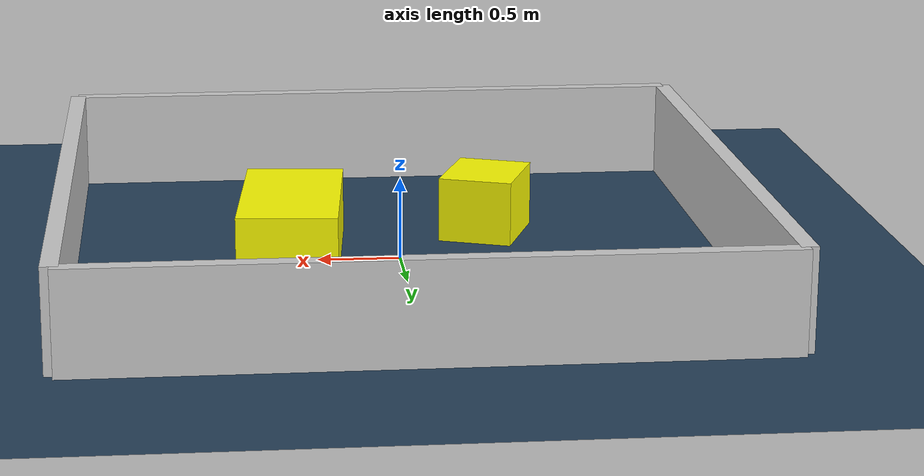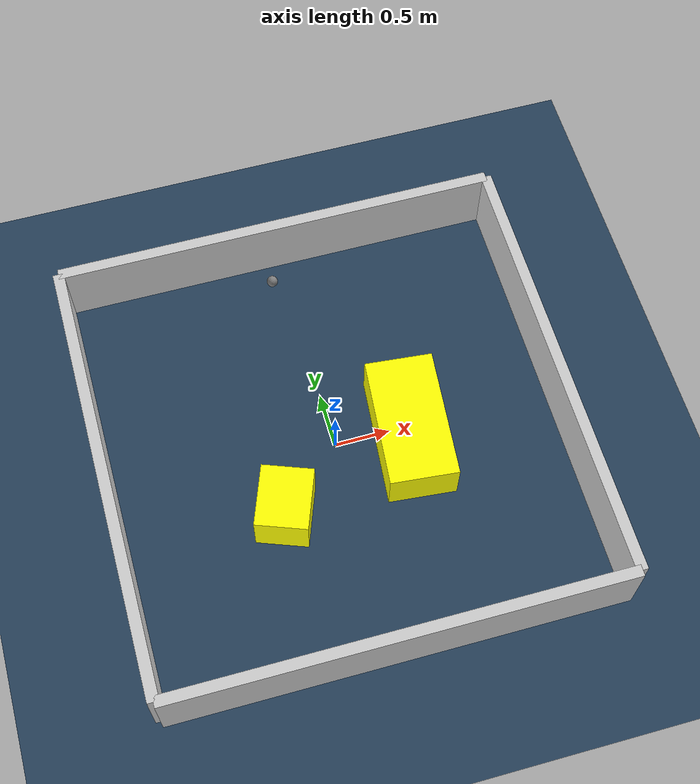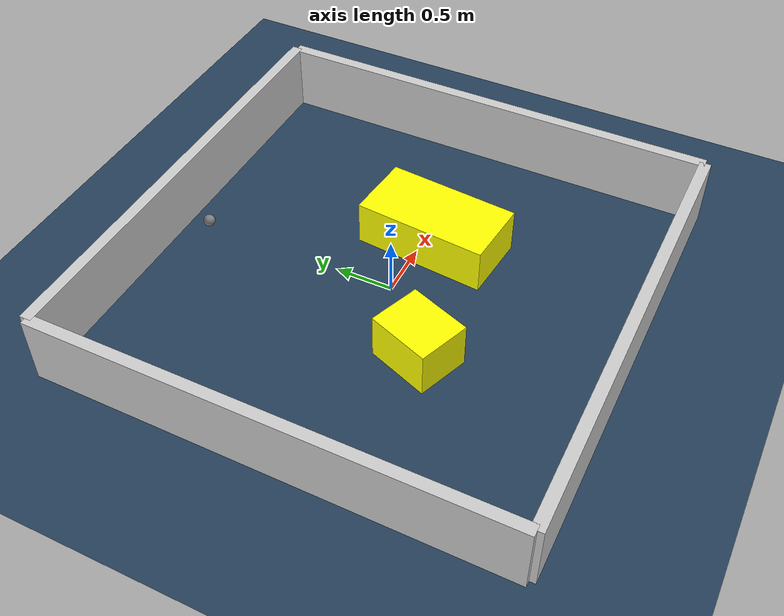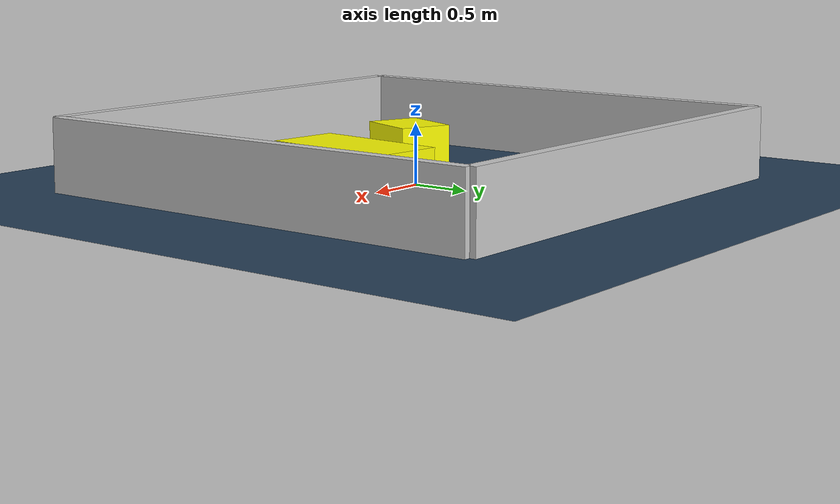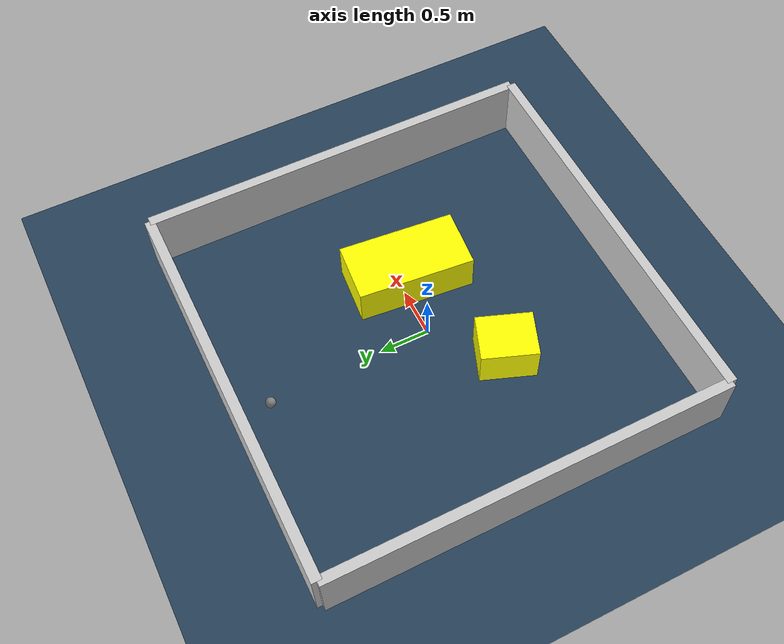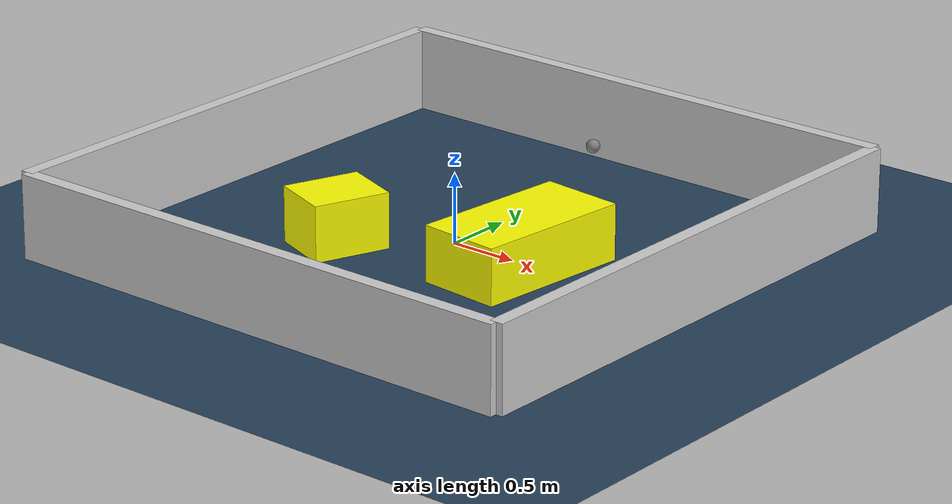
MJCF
<?xml version="1.0" ?>
<mujoco model="generated_environment">
  <option timestep="0.01" integrator="RK4" cone="elliptic"/>
  <default>
    <geom density="1"/>
  </default>
  <asset>
    <texture builtin="gradient" height="3072" rgb1="0.3 0.5 0.7" rgb2="0 0 0" type="skybox" width="512"/>
    <texture builtin="checker" height="300" mark="edge" markrgb="0.8 0.8 0.8" name="groundplane" rgb1="0.2 0.3 0.4" rgb2="0.1 0.2 0.3" type="2d" width="300"/>
    <material name="groundplane" reflectance="0.2" texrepeat="5 5" texture="groundplane" texuniform="true"/>
    <material name="robot" rgba="0.0 1.0 0.0 1"/>
  </asset>
  <worldbody>
    <light dir="0 0 -1" directional="true" pos="0 0 1.5"/>
    <geom condim="4" friction="1.0 0.005 0.001" material="groundplane" name="floor" size="0 0 0.05" type="plane"/>
    <body name="walls">
      <geom name="wall_1" condim="4" pos="-2.0 0.0 0.3" rgba="0.800000011920929 0.800000011920929 0.800000011920929 1.0" size="0.05 2.0 0.3" type="box"/>
      <geom name="wall_2" condim="4" pos="2.0 0.0 0.3" rgba="0.800000011920929 0.800000011920929 0.800000011920929 1.0" size="0.05 2.0 0.3" type="box"/>
      <geom name="wall_3" condim="4" pos="0.0 -2.0 0.3" rgba="0.800000011920929 0.800000011920929 0.800000011920929 1.0" size="2.0 0.05 0.3" type="box"/>
      <geom name="wall_4" condim="4" pos="0.0 2.0 0.3" rgba="0.800000011920929 0.800000011920929 0.800000011920929 1.0" size="2.0 0.05 0.3" type="box"/>
    </body>
    <body name="robot">
      <joint name="joint_x" type="slide" pos="0 0 0" axis="1 0 0"/>
      <joint name="joint_y" type="slide" pos="0 0 0" axis="0 1 0"/>
      <geom name="robot" type="sphere" pos="-0.13488281520927536 1.6718904938788879 0.2" size="0.05" mass="5." friction="1.0 0.005 0.0001" condim="4"/>
      <site name="sensor_ball"/>
    </body>
    <body name="obstacle_1_movable">
      <geom name="obstacle_1_movable" condim="4" pos="-0.5863163046694946 -0.5293463251800601 0.2" euler="0 0 249.3329877694819" friction="1.0 0.005 0.001" rgba="1 1 0 1" size="0.27661740222567616 0.2287689802697469 0.2" type="box" mass="0.1"/>
      <joint type="free"/>
    </body>
    <body name="obstacle_2_movable">
      <geom name="obstacle_2_movable" condim="4" pos="0.6541451585563882 -0.10183509821553183 0.2" euler="0 0 174.67834962206314" friction="1.0 0.005 0.001" rgba="1 1 0 1" size="0.30116018619198665 0.5821652068190264 0.2" type="box" mass="0.1"/>
      <joint type="free"/>
    </body>
  </worldbody>
  <actuator>
    <motor name="actuator_x" joint="joint_x" gear="1" ctrlrange="-1 1"/>
    <motor name="actuator_y" joint="joint_y" gear="1" ctrlrange="-1 1"/>
  </actuator>
</mujoco>
